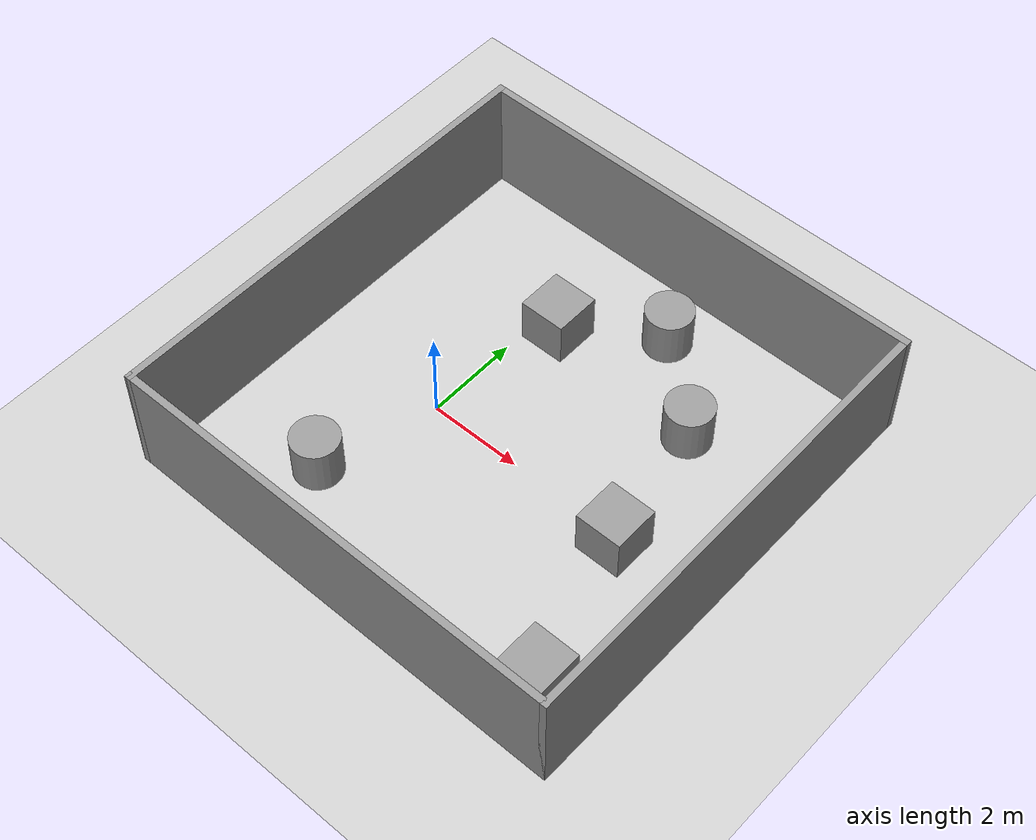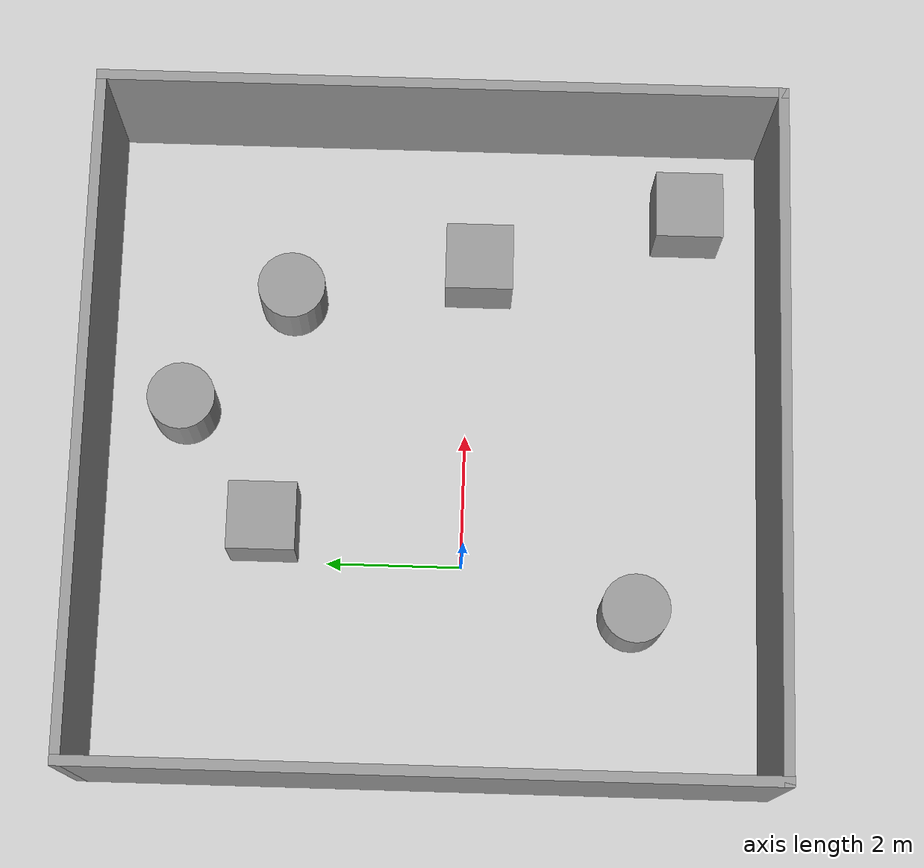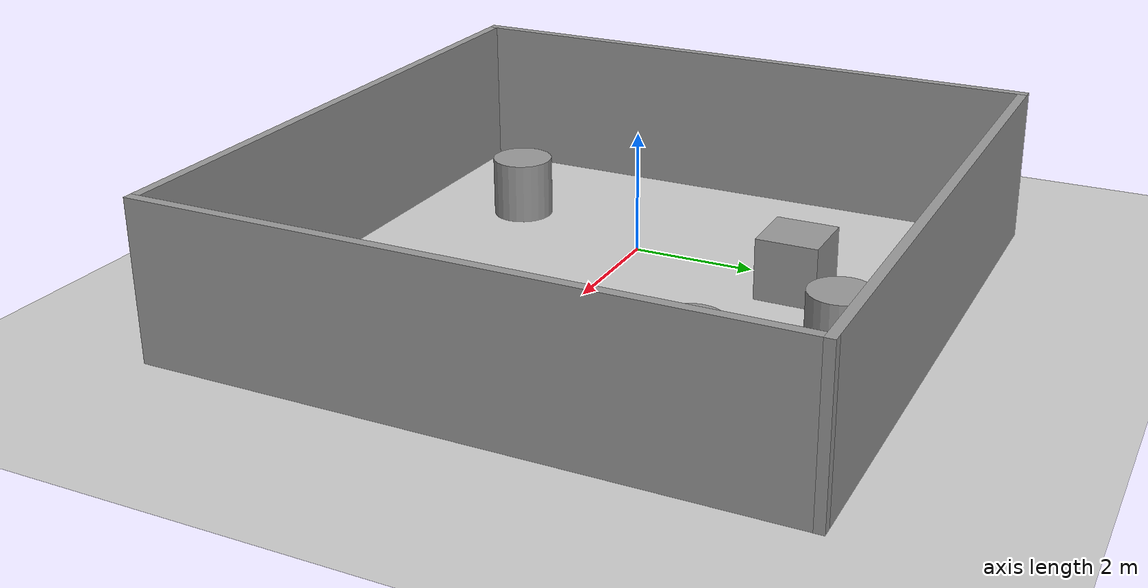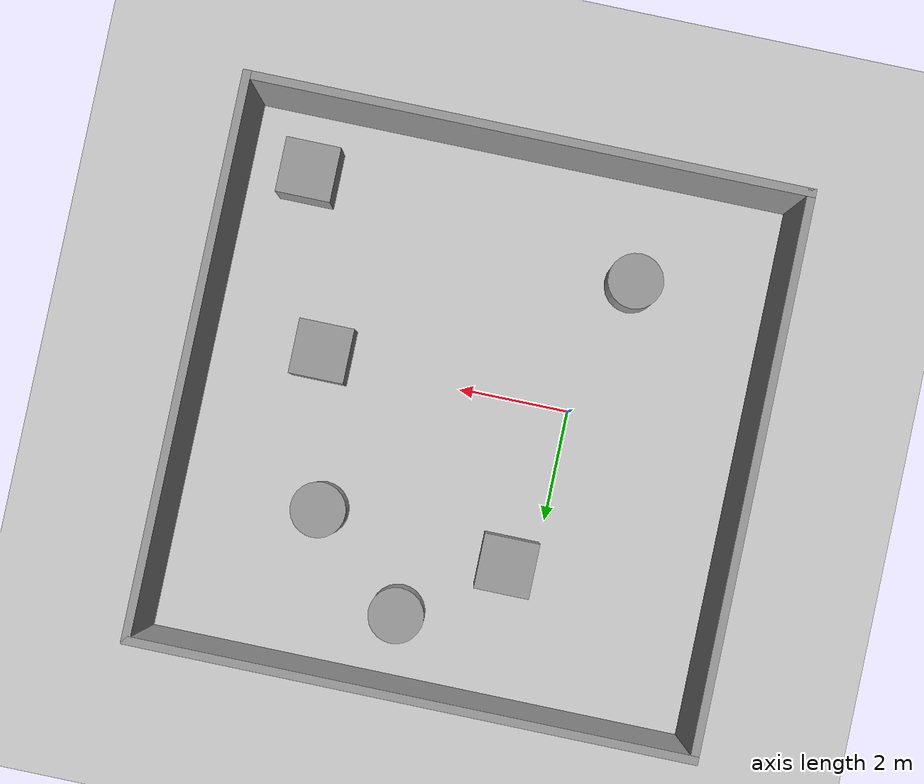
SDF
<sdf version="1.7">
 <world name="default">
  <light name="sun" type="directional">
   <pose>0 0 10 0 -0 0</pose>
   <diffuse>0.8 0.8 0.8 1</diffuse>
   <specular>0.2 0.2 0.2 1</specular>
   <attenuation>
    <range>1000</range>
    <constant>0.9</constant>
    <linear>0.01</linear>
    <quadratic>0.001</quadratic>
   </attenuation>
   <direction>-0.5 0.1 -0.9</direction>
   <spot><inner_angle>0</inner_angle><outer_angle>0</outer_angle><falloff>0</falloff></spot>
  </light>
  <model name="ground_plane">
   <static>1</static>
   <link name="link">
    <collision name="collision">
     <geometry><plane><normal>0 0 1</normal><size>100 100</size></plane></geometry>
     <surface><friction><ode><mu>100</mu><mu2>50</mu2></ode></friction></surface>
    </collision>
    <visual name="visual">
     <cast_shadows>0</cast_shadows>
     <geometry><plane><normal>0 0 1</normal><size>100 100</size></plane></geometry>
     <material>
      <script><uri>file://media/materials/scripts/gazebo.material</uri><name>Gazebo/Grey</name></script>
     </material>
    </visual>
   </link>
  </model>
  <gravity>0 0 -9.8</gravity>
  <magnetic_field>6e-06 2.3e-05 -4.2e-05</magnetic_field>
  <atmosphere type="adiabatic"/>
  <physics type="ode">
   <max_step_size>0.001</max_step_size>
   <real_time_factor>1</real_time_factor>
   <real_time_update_rate>1000</real_time_update_rate>
  </physics>
  <scene><ambient>0.4 0.4 0.4 1</ambient><background>0.7 0.7 0.7 1</background><shadows>1</shadows></scene>
  <audio><device>default</device></audio>
  <spherical_coordinates>
   <surface_model>EARTH_WGS84</surface_model>
   <latitude_deg>0</latitude_deg>
   <longitude_deg>0</longitude_deg>
   <elevation>0</elevation>
   <heading_deg>0</heading_deg>
  </spherical_coordinates>
  <model name="Untitled">
   <pose>1.71256 0.482885 0 0 -0 0</pose>
   <link name="Wall_12">
    <collision name="Wall_12_Collision">
     <geometry><box><size>10 0.15 2.5</size></box></geometry>
     <pose>0 0 1.25 0 -0 0</pose>
    </collision>
    <visual name="Wall_12_Visual">
     <pose>0 0 1.25 0 -0 0</pose>
     <geometry><box><size>10 0.15 2.5</size></box></geometry>
     <material>
      <script><uri>file://media/materials/scripts/gazebo.material</uri><name>Gazebo/Grey</name></script>
      <ambient>1 1 1 1</ambient>
     </material>
     <meta><layer>0</layer></meta>
    </visual>
    <pose>4.925 -0 0 0 -0 1.5708</pose>
   </link>
   <link name="Wall_13">
    <collision name="Wall_13_Collision">
     <geometry><box><size>10 0.15 2.5</size></box></geometry>
     <pose>0 0 1.25 0 -0 0</pose>
    </collision>
    <visual name="Wall_13_Visual">
     <pose>0 0 1.25 0 -0 0</pose>
     <geometry><box><size>10 0.15 2.5</size></box></geometry>
     <material>
      <script><uri>file://media/materials/scripts/gazebo.material</uri><name>Gazebo/Grey</name></script>
      <ambient>1 1 1 1</ambient>
     </material>
     <meta><layer>0</layer></meta>
    </visual>
    <pose>-0 4.925 0 0 -0 3.14159</pose>
   </link>
   <link name="Wall_8">
    <collision name="Wall_8_Collision">
     <geometry><box><size>10 0.15 2.5</size></box></geometry>
     <pose>0 0 1.25 0 -0 0</pose>
    </collision>
    <visual name="Wall_8_Visual">
     <pose>0 0 1.25 0 -0 0</pose>
     <geometry><box><size>10 0.15 2.5</size></box></geometry>
     <material>
      <script><uri>file://media/materials/scripts/gazebo.material</uri><name>Gazebo/Grey</name></script>
      <ambient>1 1 1 1</ambient>
     </material>
     <meta><layer>0</layer></meta>
    </visual>
    <pose>-4.925 -0 0 0 -0 -1.5708</pose>
   </link>
   <link name="Wall_9">
    <collision name="Wall_9_Collision">
     <geometry><box><size>10 0.15 2.5</size></box></geometry>
     <pose>0 0 1.25 0 -0 0</pose>
    </collision>
    <visual name="Wall_9_Visual">
     <pose>0 0 1.25 0 -0 0</pose>
     <geometry><box><size>10 0.15 2.5</size></box></geometry>
     <material>
      <script><uri>file://media/materials/scripts/gazebo.material</uri><name>Gazebo/Grey</name></script>
      <ambient>1 1 1 1</ambient>
     </material>
     <meta><layer>0</layer></meta>
    </visual>
    <pose>-0 -4.925 0 0 -0 0</pose>
   </link>
   <static>1</static>
  </model>
  <model name="unit_cylinder">
   <pose>4.00762 2.63687 0.499998 3e-06 -4e-06 0</pose>
   <link name="link">
    <inertial>
     <mass>1</mass>
     <inertia><ixx>0.145833</ixx><ixy>0</ixy><ixz>0</ixz><iyy>0.145833</iyy><iyz>0</iyz><izz>0.125</izz></inertia>
    </inertial>
    <collision name="collision">
     <geometry><cylinder><radius>0.5</radius><length>1</length></cylinder></geometry>
    </collision>
    <visual name="visual">
     <geometry><cylinder><radius>0.5</radius><length>1</length></cylinder></geometry>
     <material>
      <script><name>Gazebo/Grey</name><uri>file://media/materials/scripts/gazebo.material</uri></script>
     </material>
    </visual>
   </link>
  </model>
  <model name="unit_box">
   <pose>0.520161 2.92156 0.499995 0 1e-05 0</pose>
   <link name="link">
    <inertial>
     <mass>1</mass>
     <inertia>
      <ixx>0.166667</ixx>
      <ixy>0</ixy>
      <ixz>0</ixz>
      <iyy>0.166667</iyy>
      <iyz>0</iyz>
      <izz>0.166667</izz>
     </inertia>
    </inertial>
    <collision name="collision"><geometry><box><size>1 1 1</size></box></geometry></collision>
    <visual name="visual">
     <geometry><box><size>1 1 1</size></box></geometry>
     <material>
      <script><name>Gazebo/Grey</name><uri>file://media/materials/scripts/gazebo.material</uri></script>
     </material>
    </visual>
   </link>
  </model>
  <model name="unit_box_0">
   <pose>5.43668 -3.2555 0.499995 -1e-05 -0 -0</pose>
   <link name="link">
    <inertial>
     <mass>1</mass>
     <inertia>
      <ixx>0.166667</ixx>
      <ixy>0</ixy>
      <ixz>0</ixz>
      <iyy>0.166667</iyy>
      <iyz>0</iyz>
      <izz>0.166667</izz>
     </inertia>
    </inertial>
    <collision name="collision"><geometry><box><size>1 1 1</size></box></geometry></collision>
    <visual name="visual">
     <geometry><box><size>1 1 1</size></box></geometry>
     <material>
      <script><name>Gazebo/Grey</name><uri>file://media/materials/scripts/gazebo.material</uri></script>
     </material>
    </visual>
   </link>
  </model>
  <model name="unit_cylinder_0">
   <pose>2.266 4.18446 0.499997 3e-06 4e-06 -0</pose>
   <link name="link">
    <inertial>
     <mass>1</mass>
     <inertia><ixx>0.145833</ixx><ixy>0</ixy><ixz>0</ixz><iyy>0.145833</iyy><iyz>0</iyz><izz>0.125</izz></inertia>
    </inertial>
    <collision name="collision">
     <geometry><cylinder><radius>0.5</radius><length>1</length></cylinder></geometry>
    </collision>
    <visual name="visual">
     <geometry><cylinder><radius>0.5</radius><length>1</length></cylinder></geometry>
     <material>
      <script><name>Gazebo/Grey</name><uri>file://media/materials/scripts/gazebo.material</uri></script>
     </material>
    </visual>
   </link>
  </model>
  <model name="unit_cylinder_1">
   <pose>-0.681143 -2.50778 0.499993 -3e-06 -4e-06 -0</pose>
   <link name="link">
    <inertial>
     <mass>1</mass>
     <inertia><ixx>0.145833</ixx><ixy>0</ixy><ixz>0</ixz><iyy>0.145833</iyy><iyz>0</iyz><izz>0.125</izz></inertia>
    </inertial>
    <collision name="collision">
     <geometry><cylinder><radius>0.5</radius><length>1</length></cylinder></geometry>
    </collision>
    <visual name="visual">
     <geometry><cylinder><radius>0.5</radius><length>1</length></cylinder></geometry>
     <material>
      <script><name>Gazebo/Grey</name><uri>file://media/materials/scripts/gazebo.material</uri></script>
     </material>
    </visual>
   </link>
  </model>
  <model name="unit_box_1">
   <pose>4.53524 -0.138181 0.5 0 -0 0</pose>
   <link name="link">
    <inertial>
     <mass>1</mass>
     <inertia>
      <ixx>0.166667</ixx>
      <ixy>0</ixy>
      <ixz>0</ixz>
      <iyy>0.166667</iyy>
      <iyz>0</iyz>
      <izz>0.166667</izz>
     </inertia>
    </inertial>
    <collision name="collision"><geometry><box><size>1 1 1</size></box></geometry></collision>
    <visual name="visual">
     <geometry><box><size>1 1 1</size></box></geometry>
     <material>
      <script><name>Gazebo/Grey</name><uri>file://media/materials/scripts/gazebo.material</uri></script>
     </material>
    </visual>
   </link>
  </model>
 </world>
</sdf>
